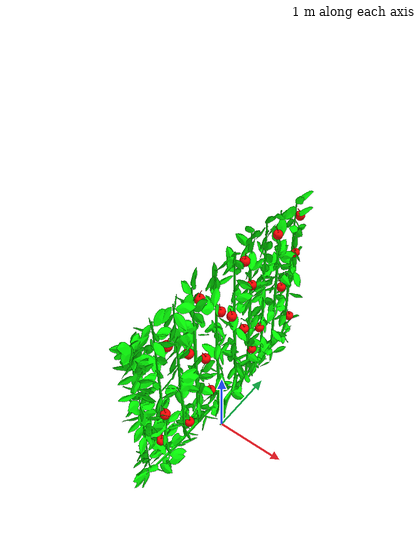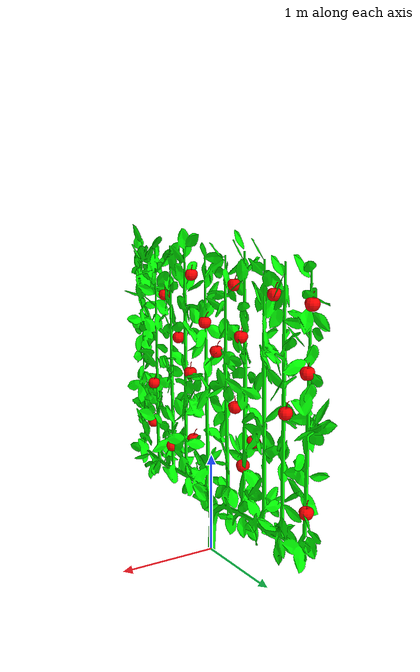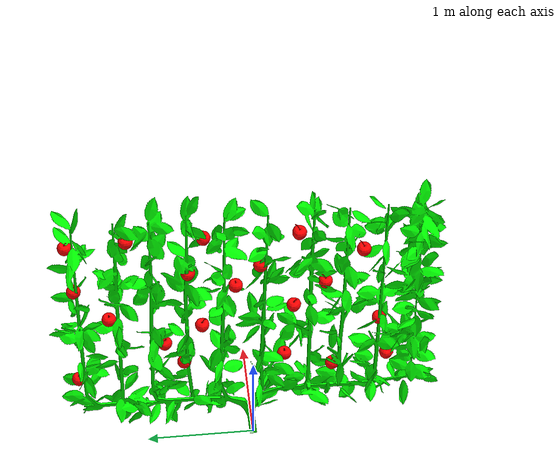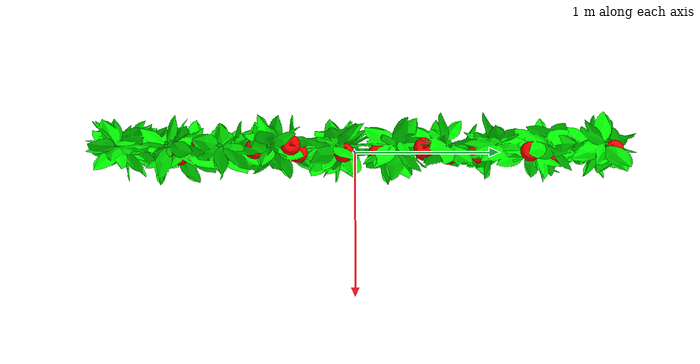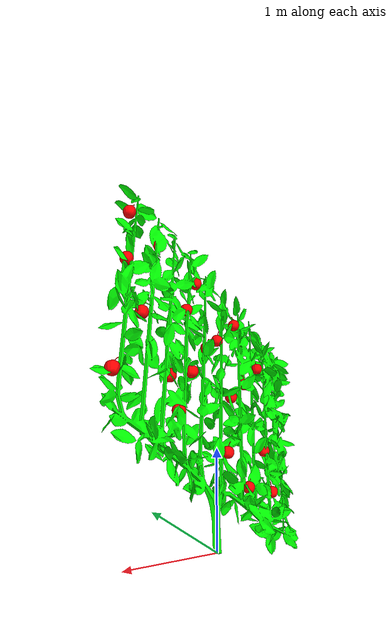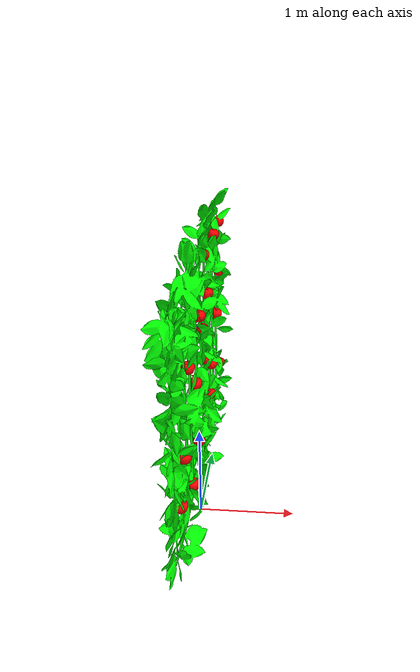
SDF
<?xml version="1.0" ?>
<sdf version="1.5">
  <model name="field_map">

    <include>
      <name>p1</name>
      <pose>0.0 0 0 0 0 0</pose>
      <uri>model://plant</uri>
    </include>

<include>
<name>a1</name>
<pose>0 1.2958 1.868 0 0 1.825 </pose>
<uri>model://apple</uri>
</include>

<include>
<name>a2</name>
<pose>0 -0.39172 1.8942 0 0 2.5274 </pose>
<uri>model://apple</uri>
</include>

<include>
<name>a3</name>
<pose>0 -0.93213 2.6267 0 0 0.039576 </pose>
<uri>model://apple</uri>
</include>

<include>
<name>a4</name>
<pose>0 -1.1913 1.151 0 0 0.36069 </pose>
<uri>model://apple</uri>
</include>

<include>
<name>a5</name>
<pose>0 0.47493 2.8955 0 0 0.65698 </pose>
<uri>model://apple</uri>
</include>

<include>
<name>a6</name>
<pose>0 -0.73898 1.0118 0 0 1.8818 </pose>
<uri>model://apple</uri>
</include>

<include>
<name>a7</name>
<pose>0 1.6174 2.8728 0 0 2.3198 </pose>
<uri>model://apple</uri>
</include>

<include>
<name>a8</name>
<pose>0 -0.28112 1.2055 0 0 1.6225 </pose>
<uri>model://apple</uri>
</include>

<include>
<name>a9</name>
<pose>0 0.16785 2.2109 0 0 1.5389 </pose>
<uri>model://apple</uri>
</include>

<include>
<name>a10</name>
<pose>0 1.5819 2.2847 0 0 2.0789 </pose>
<uri>model://apple</uri>
</include>

<include>
<name>a11</name>
<pose>0 1.1111 2.8906 0 0 1.8148 </pose>
<uri>model://apple</uri>
</include>

<include>
<name>a12</name>
<pose>0 1.5855 1.0603 0 0 2.349 </pose>
<uri>model://apple</uri>
</include>

<include>
<name>a13</name>
<pose>0 0.42657 1.7208 0 0 2.9491 </pose>
<uri>model://apple</uri>
</include>

<include>
<name>a14</name>
<pose>0 -1.1412 1.6192 0 0 1.594 </pose>
<uri>model://apple</uri>
</include>

<include>
<name>a15</name>
<pose>0 -0.048192 2.4636 0 0 1.3448 </pose>
<uri>model://apple</uri>
</include>

<include>
<name>a16</name>
<pose>0 0.79027 1.4763 0 0 2.1781 </pose>
<uri>model://apple</uri>
</include>

<include>
<name>a17</name>
<pose>0 0.55502 2.4242 0 0 2.436 </pose>
<uri>model://apple</uri>
</include>

<include>
<name>a18</name>
<pose>0 -0.359 2.9015 0 0 0.10051 </pose>
<uri>model://apple</uri>
</include>

<include>
<name>a19</name>
<pose>0 -0.6035 2.215 0 0 0.44508 </pose>
<uri>model://apple</uri>
</include>

<include>
<name>a20</name>
<pose>0 0.64602 1.1927 0 0 1.4555 </pose>
<uri>model://apple</uri>
</include>

  </model>
</sdf>

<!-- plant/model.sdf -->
<sdf version="1.5">
  <model name="plant">
    <static>true</static>
    <link name="link">
      <pose>0 0 0 0 0 0</pose>
      <visual name="visual">
        <geometry>
          <mesh>
            <uri>model://plant/meshes/plant.stl</uri>
          </mesh>
        </geometry>
        <material>
          <ambient>0 1 0 1</ambient>
          <diffuse>0 1 0 1</diffuse>
          <specular>0.1 0.1 0.1 1</specular>
          <emissive>0 0 0 0</emissive>
        </material>
      </visual>
    </link>
  </model>
</sdf>

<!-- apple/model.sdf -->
<sdf version="1.5">
  <model name="apple">
    <static>true</static>
    <link name="link">
      <pose>0 0 0 0 0 0</pose>
      <visual name="visual">
        <geometry>
          <mesh>
            <uri>model://apple/meshes/apple.stl</uri>
            <scale>0.5 0.5 0.5</scale>
          </mesh>
        </geometry>
        <material>
          <ambient>1 0 0 1</ambient>
          <diffuse>1 0 0 1</diffuse>
          <specular>0.1 0.1 0.1 1</specular>
          <emissive>0 0 0 0</emissive>
        </material>
      </visual>
    </link>
  </model>
</sdf>
